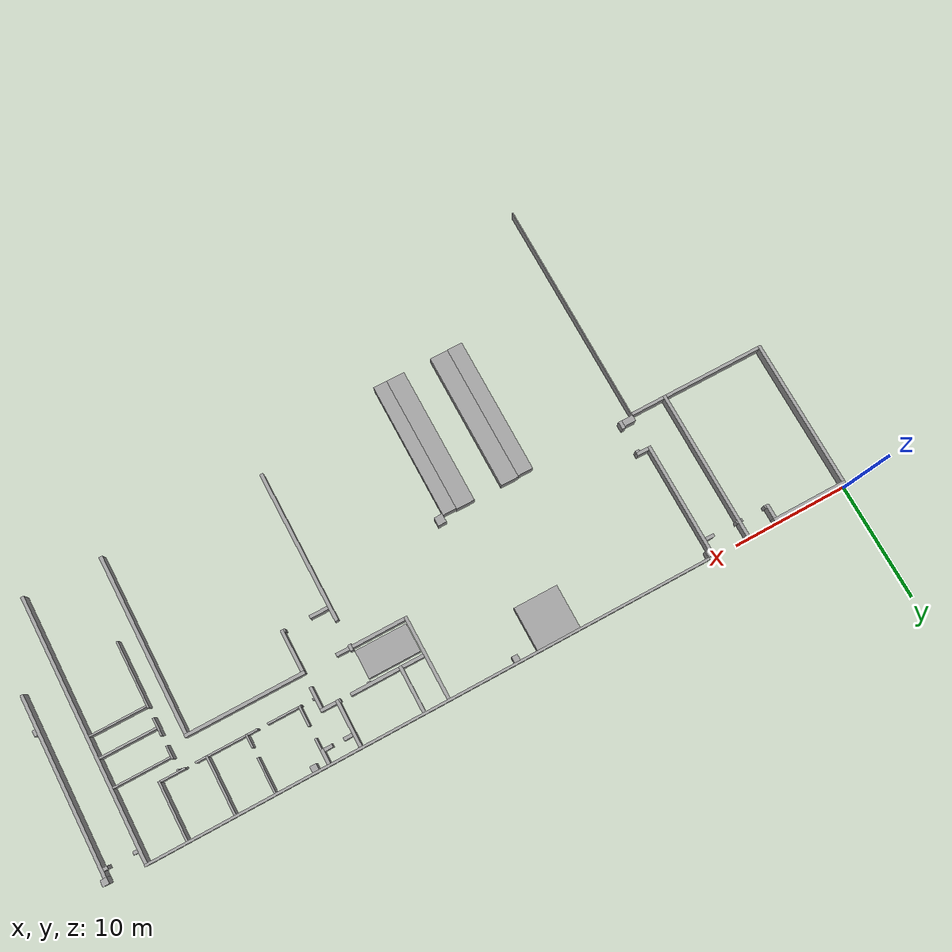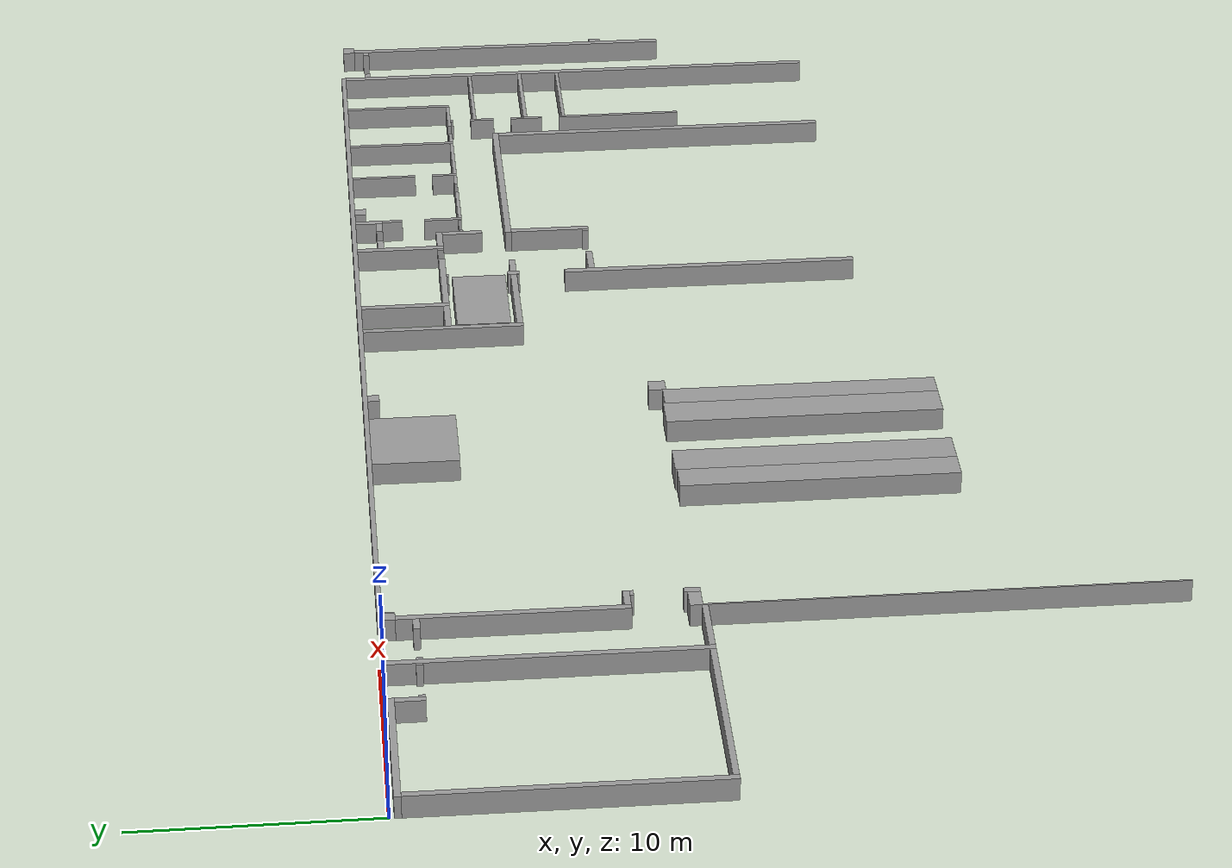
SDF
<sdf version="1.4">
 <model name="AdlerErfurtShopUpstairs">
  <static>1</static>
  <link name="Wall_0">
   <collision name="Wall_0_Collision">
    <geometry><box><size>48.51064 0.20426 1.00000</size></box></geometry>
    <pose>36.84255 -0.10213 0.50000 0 0 0.00000</pose>
   </collision>
   <visual name="Wall_0_Visual">
    <geometry><box><size>48.51064 0.20426 1.00000</size></box></geometry>
    <material>
     <script><uri>file://media/materials/scripts/gazebo.material</uri><name>Gazebo/Grey</name></script>
    </material>
    <pose>36.84255 -0.10213 0.50000 0 0 0.00000</pose>
   </visual>
  </link>
  <link name="Wall_1">
   <collision name="Wall_1_Collision">
    <geometry><box><size>6.56170 0.28085 1.00000</size></box></geometry>
    <pose>3.28085 -0.31915 0.50000 0 0 0.00000</pose>
   </collision>
   <visual name="Wall_1_Visual">
    <geometry><box><size>6.56170 0.28085 1.00000</size></box></geometry>
    <material>
     <script><uri>file://media/materials/scripts/gazebo.material</uri><name>Gazebo/Grey</name></script>
    </material>
    <pose>3.28085 -0.31915 0.50000 0 0 0.00000</pose>
   </visual>
  </link>
  <link name="Wall_2">
   <collision name="Wall_2_Collision">
    <geometry><box><size>0.28085 13.07234 1.00000</size></box></geometry>
    <pose>9.02553 -6.71489 0.50000 0 0 0.00000</pose>
   </collision>
   <visual name="Wall_2_Visual">
    <geometry><box><size>0.28085 13.07234 1.00000</size></box></geometry>
    <material>
     <script><uri>file://media/materials/scripts/gazebo.material</uri><name>Gazebo/Grey</name></script>
    </material>
    <pose>9.02553 -6.71489 0.50000 0 0 0.00000</pose>
   </visual>
  </link>
  <link name="Wall_3">
   <collision name="Wall_3_Collision">
    <geometry><box><size>0.51064 0.53617 1.00000</size></box></geometry>
    <pose>12.33191 -0.44681 0.50000 0 0 0.00000</pose>
   </collision>
   <visual name="Wall_3_Visual">
    <geometry><box><size>0.51064 0.53617 1.00000</size></box></geometry>
    <material>
     <script><uri>file://media/materials/scripts/gazebo.material</uri><name>Gazebo/Grey</name></script>
    </material>
    <pose>12.33191 -0.44681 0.50000 0 0 0.00000</pose>
   </visual>
  </link>
  <link name="Wall_4">
   <collision name="Wall_4_Collision">
    <geometry><box><size>0.53617 0.53617 1.00000</size></box></geometry>
    <pose>64.17447 -0.44681 0.50000 0 0 0.00000</pose>
   </collision>
   <visual name="Wall_4_Visual">
    <geometry><box><size>0.53617 0.53617 1.00000</size></box></geometry>
    <material>
     <script><uri>file://media/materials/scripts/gazebo.material</uri><name>Gazebo/Grey</name></script>
    </material>
    <pose>64.17447 -0.44681 0.50000 0 0 0.00000</pose>
   </visual>
  </link>
  <link name="Wall_5">
   <collision name="Wall_5_Collision">
    <geometry><box><size>0.05106 0.51064 1.00000</size></box></geometry>
    <pose>12.61277 -0.45957 0.50000 0 0 0.00000</pose>
   </collision>
   <visual name="Wall_5_Visual">
    <geometry><box><size>0.05106 0.51064 1.00000</size></box></geometry>
    <material>
     <script><uri>file://media/materials/scripts/gazebo.material</uri><name>Gazebo/Grey</name></script>
    </material>
    <pose>12.61277 -0.45957 0.50000 0 0 0.00000</pose>
   </visual>
  </link>
  <link name="Wall_6">
   <collision name="Wall_6_Collision">
    <geometry><box><size>3.77872 3.72766 1.00000</size></box></geometry>
    <pose>25.99149 -2.06809 0.50000 0 0 0.00000</pose>
   </collision>
   <visual name="Wall_6_Visual">
    <geometry><box><size>3.77872 3.72766 1.00000</size></box></geometry>
    <material>
     <script><uri>file://media/materials/scripts/gazebo.material</uri><name>Gazebo/Grey</name></script>
    </material>
    <pose>25.99149 -2.06809 0.50000 0 0 0.00000</pose>
   </visual>
  </link>
  <link name="Wall_7">
   <collision name="Wall_7_Collision">
    <geometry><box><size>0.51064 0.51064 1.00000</size></box></geometry>
    <pose>29.61702 -0.45957 0.50000 0 0 0.00000</pose>
   </collision>
   <visual name="Wall_7_Visual">
    <geometry><box><size>0.51064 0.51064 1.00000</size></box></geometry>
    <material>
     <script><uri>file://media/materials/scripts/gazebo.material</uri><name>Gazebo/Grey</name></script>
    </material>
    <pose>29.61702 -0.45957 0.50000 0 0 0.00000</pose>
   </visual>
  </link>
  <link name="Wall_8">
   <collision name="Wall_8_Collision">
    <geometry><box><size>0.28085 7.14894 1.00000</size></box></geometry>
    <pose>35.57872 -3.77872 0.50000 0 0 0.00000</pose>
   </collision>
   <visual name="Wall_8_Visual">
    <geometry><box><size>0.28085 7.14894 1.00000</size></box></geometry>
    <material>
     <script><uri>file://media/materials/scripts/gazebo.material</uri><name>Gazebo/Grey</name></script>
    </material>
    <pose>35.57872 -3.77872 0.50000 0 0 0.00000</pose>
   </visual>
  </link>
  <link name="Wall_9">
   <collision name="Wall_9_Collision">
    <geometry><box><size>0.28085 3.95745 1.00000</size></box></geometry>
    <pose>37.69787 -2.18298 0.50000 0 0 0.00000</pose>
   </collision>
   <visual name="Wall_9_Visual">
    <geometry><box><size>0.28085 3.95745 1.00000</size></box></geometry>
    <material>
     <script><uri>file://media/materials/scripts/gazebo.material</uri><name>Gazebo/Grey</name></script>
    </material>
    <pose>37.69787 -2.18298 0.50000 0 0 0.00000</pose>
   </visual>
  </link>
  <link name="Wall_10">
   <collision name="Wall_10_Collision">
    <geometry><box><size>0.28085 3.95745 1.00000</size></box></geometry>
    <pose>43.11064 -2.18298 0.50000 0 0 0.00000</pose>
   </collision>
   <visual name="Wall_10_Visual">
    <geometry><box><size>0.28085 3.95745 1.00000</size></box></geometry>
    <material>
     <script><uri>file://media/materials/scripts/gazebo.material</uri><name>Gazebo/Grey</name></script>
    </material>
    <pose>43.11064 -2.18298 0.50000 0 0 0.00000</pose>
   </visual>
  </link>
  <link name="Wall_11">
   <collision name="Wall_11_Collision">
    <geometry><box><size>0.28085 1.22553 1.00000</size></box></geometry>
    <pose>45.79149 -0.81702 0.50000 0 0 0.00000</pose>
   </collision>
   <visual name="Wall_11_Visual">
    <geometry><box><size>0.28085 1.22553 1.00000</size></box></geometry>
    <material>
     <script><uri>file://media/materials/scripts/gazebo.material</uri><name>Gazebo/Grey</name></script>
    </material>
    <pose>45.79149 -0.81702 0.50000 0 0 0.00000</pose>
   </visual>
  </link>
  <link name="Wall_12">
   <collision name="Wall_12_Collision">
    <geometry><box><size>0.53617 0.51064 1.00000</size></box></geometry>
    <pose>46.88936 -0.45957 0.50000 0 0 0.00000</pose>
   </collision>
   <visual name="Wall_12_Visual">
    <geometry><box><size>0.53617 0.51064 1.00000</size></box></geometry>
    <material>
     <script><uri>file://media/materials/scripts/gazebo.material</uri><name>Gazebo/Grey</name></script>
    </material>
    <pose>46.88936 -0.45957 0.50000 0 0 0.00000</pose>
   </visual>
  </link>
  <link name="Wall_13">
   <collision name="Wall_13_Collision">
    <geometry><box><size>0.15319 2.96170 1.00000</size></box></geometry>
    <pose>50.29787 -1.68511 0.50000 0 0 0.00000</pose>
   </collision>
   <visual name="Wall_13_Visual">
    <geometry><box><size>0.15319 2.96170 1.00000</size></box></geometry>
    <material>
     <script><uri>file://media/materials/scripts/gazebo.material</uri><name>Gazebo/Grey</name></script>
    </material>
    <pose>50.29787 -1.68511 0.50000 0 0 0.00000</pose>
   </visual>
  </link>
  <link name="Wall_14">
   <collision name="Wall_14_Collision">
    <geometry><box><size>0.17872 4.92766 1.00000</size></box></geometry>
    <pose>53.62979 -2.66809 0.50000 0 0 0.00000</pose>
   </collision>
   <visual name="Wall_14_Visual">
    <geometry><box><size>0.17872 4.92766 1.00000</size></box></geometry>
    <material>
     <script><uri>file://media/materials/scripts/gazebo.material</uri><name>Gazebo/Grey</name></script>
    </material>
    <pose>53.62979 -2.66809 0.50000 0 0 0.00000</pose>
   </visual>
  </link>
  <link name="Wall_15">
   <collision name="Wall_15_Collision">
    <geometry><box><size>0.17872 4.92766 1.00000</size></box></geometry>
    <pose>57.58723 -2.66809 0.50000 0 0 0.00000</pose>
   </collision>
   <visual name="Wall_15_Visual">
    <geometry><box><size>0.17872 4.92766 1.00000</size></box></geometry>
    <material>
     <script><uri>file://media/materials/scripts/gazebo.material</uri><name>Gazebo/Grey</name></script>
    </material>
    <pose>57.58723 -2.66809 0.50000 0 0 0.00000</pose>
   </visual>
  </link>
  <link name="Wall_16">
   <collision name="Wall_16_Collision">
    <geometry><box><size>0.28085 22.57021 1.00000</size></box></geometry>
    <pose>60.95745 -11.48936 0.50000 0 0 0.00000</pose>
   </collision>
   <visual name="Wall_16_Visual">
    <geometry><box><size>0.28085 22.57021 1.00000</size></box></geometry>
    <material>
     <script><uri>file://media/materials/scripts/gazebo.material</uri><name>Gazebo/Grey</name></script>
    </material>
    <pose>60.95745 -11.48936 0.50000 0 0 0.00000</pose>
   </visual>
  </link>
  <link name="Wall_17">
   <collision name="Wall_17_Collision">
    <geometry><box><size>0.28085 12.79149 1.00000</size></box></geometry>
    <pose>0.14043 -6.85532 0.50000 0 0 0.00000</pose>
   </collision>
   <visual name="Wall_17_Visual">
    <geometry><box><size>0.28085 12.79149 1.00000</size></box></geometry>
    <material>
     <script><uri>file://media/materials/scripts/gazebo.material</uri><name>Gazebo/Grey</name></script>
    </material>
    <pose>0.14043 -6.85532 0.50000 0 0 0.00000</pose>
   </visual>
  </link>
  <link name="Wall_18">
   <collision name="Wall_18_Collision">
    <geometry><box><size>0.28085 1.22553 1.00000</size></box></geometry>
    <pose>6.42128 -1.07234 0.50000 0 0 0.00000</pose>
   </collision>
   <visual name="Wall_18_Visual">
    <geometry><box><size>0.28085 1.22553 1.00000</size></box></geometry>
    <material>
     <script><uri>file://media/materials/scripts/gazebo.material</uri><name>Gazebo/Grey</name></script>
    </material>
    <pose>6.42128 -1.07234 0.50000 0 0 0.00000</pose>
   </visual>
  </link>
  <link name="Wall_19">
   <collision name="Wall_19_Collision">
    <geometry><box><size>0.28085 9.47234 1.00000</size></box></geometry>
    <pose>12.21702 -5.45106 0.50000 0 0 0.00000</pose>
   </collision>
   <visual name="Wall_19_Visual">
    <geometry><box><size>0.28085 9.47234 1.00000</size></box></geometry>
    <material>
     <script><uri>file://media/materials/scripts/gazebo.material</uri><name>Gazebo/Grey</name></script>
    </material>
    <pose>12.21702 -5.45106 0.50000 0 0 0.00000</pose>
   </visual>
  </link>
  <link name="Wall_20">
   <collision name="Wall_20_Collision">
    <geometry><box><size>0.28085 15.16596 1.00000</size></box></geometry>
    <pose>64.04681 -8.29787 0.50000 0 0 0.00000</pose>
   </collision>
   <visual name="Wall_20_Visual">
    <geometry><box><size>0.28085 15.16596 1.00000</size></box></geometry>
    <material>
     <script><uri>file://media/materials/scripts/gazebo.material</uri><name>Gazebo/Grey</name></script>
    </material>
    <pose>64.04681 -8.29787 0.50000 0 0 0.00000</pose>
   </visual>
  </link>
  <link name="Wall_21">
   <collision name="Wall_21_Collision">
    <geometry><box><size>0.74043 0.28085 1.00000</size></box></geometry>
    <pose>43.62128 -1.28936 0.50000 0 0 0.00000</pose>
   </collision>
   <visual name="Wall_21_Visual">
    <geometry><box><size>0.74043 0.28085 1.00000</size></box></geometry>
    <material>
     <script><uri>file://media/materials/scripts/gazebo.material</uri><name>Gazebo/Grey</name></script>
    </material>
    <pose>43.62128 -1.28936 0.50000 0 0 0.00000</pose>
   </visual>
  </link>
  <link name="Wall_22">
   <collision name="Wall_22_Collision">
    <geometry><box><size>0.71489 0.28085 1.00000</size></box></geometry>
    <pose>45.29362 -1.28936 0.50000 0 0 0.00000</pose>
   </collision>
   <visual name="Wall_22_Visual">
    <geometry><box><size>0.71489 0.28085 1.00000</size></box></geometry>
    <material>
     <script><uri>file://media/materials/scripts/gazebo.material</uri><name>Gazebo/Grey</name></script>
    </material>
    <pose>45.29362 -1.28936 0.50000 0 0 0.00000</pose>
   </visual>
  </link>
  <link name="Wall_23">
   <collision name="Wall_23_Collision">
    <geometry><box><size>0.38298 0.28085 1.00000</size></box></geometry>
    <pose>61.28936 -1.28936 0.50000 0 0 0.00000</pose>
   </collision>
   <visual name="Wall_23_Visual">
    <geometry><box><size>0.38298 0.28085 1.00000</size></box></geometry>
    <material>
     <script><uri>file://media/materials/scripts/gazebo.material</uri><name>Gazebo/Grey</name></script>
    </material>
    <pose>61.28936 -1.28936 0.50000 0 0 0.00000</pose>
   </visual>
  </link>
  <link name="Wall_24">
   <collision name="Wall_24_Collision">
    <geometry><box><size>0.35745 0.28085 1.00000</size></box></geometry>
    <pose>63.72766 -1.28936 0.50000 0 0 0.00000</pose>
   </collision>
   <visual name="Wall_24_Visual">
    <geometry><box><size>0.35745 0.28085 1.00000</size></box></geometry>
    <material>
     <script><uri>file://media/materials/scripts/gazebo.material</uri><name>Gazebo/Grey</name></script>
    </material>
    <pose>63.72766 -1.28936 0.50000 0 0 0.00000</pose>
   </visual>
  </link>
  <link name="Wall_25">
   <collision name="Wall_25_Collision">
    <geometry><box><size>0.12766 0.28085 1.00000</size></box></geometry>
    <pose>6.62553 -1.54468 0.50000 0 0 0.00000</pose>
   </collision>
   <visual name="Wall_25_Visual">
    <geometry><box><size>0.12766 0.28085 1.00000</size></box></geometry>
    <material>
     <script><uri>file://media/materials/scripts/gazebo.material</uri><name>Gazebo/Grey</name></script>
    </material>
    <pose>6.62553 -1.54468 0.50000 0 0 0.00000</pose>
   </visual>
  </link>
  <link name="Wall_26">
   <collision name="Wall_26_Collision">
    <geometry><box><size>0.12766 0.28085 1.00000</size></box></geometry>
    <pose>8.82128 -1.54468 0.50000 0 0 0.00000</pose>
   </collision>
   <visual name="Wall_26_Visual">
    <geometry><box><size>0.12766 0.28085 1.00000</size></box></geometry>
    <material>
     <script><uri>file://media/materials/scripts/gazebo.material</uri><name>Gazebo/Grey</name></script>
    </material>
    <pose>8.82128 -1.54468 0.50000 0 0 0.00000</pose>
   </visual>
  </link>
  <link name="Wall_27">
   <collision name="Wall_27_Collision">
    <geometry><box><size>0.12766 0.28085 1.00000</size></box></geometry>
    <pose>9.22979 -1.54468 0.50000 0 0 0.00000</pose>
   </collision>
   <visual name="Wall_27_Visual">
    <geometry><box><size>0.12766 0.28085 1.00000</size></box></geometry>
    <material>
     <script><uri>file://media/materials/scripts/gazebo.material</uri><name>Gazebo/Grey</name></script>
    </material>
    <pose>9.22979 -1.54468 0.50000 0 0 0.00000</pose>
   </visual>
  </link>
  <link name="Wall_28">
   <collision name="Wall_28_Collision">
    <geometry><box><size>0.74043 0.28085 1.00000</size></box></geometry>
    <pose>11.70638 -1.54468 0.50000 0 0 0.00000</pose>
   </collision>
   <visual name="Wall_28_Visual">
    <geometry><box><size>0.74043 0.28085 1.00000</size></box></geometry>
    <material>
     <script><uri>file://media/materials/scripts/gazebo.material</uri><name>Gazebo/Grey</name></script>
    </material>
    <pose>11.70638 -1.54468 0.50000 0 0 0.00000</pose>
   </visual>
  </link>
  <link name="Wall_29">
   <collision name="Wall_29_Collision">
    <geometry><box><size>0.17872 0.94468 1.00000</size></box></geometry>
    <pose>45.84255 -1.90213 0.50000 0 0 0.00000</pose>
   </collision>
   <visual name="Wall_29_Visual">
    <geometry><box><size>0.17872 0.94468 1.00000</size></box></geometry>
    <material>
     <script><uri>file://media/materials/scripts/gazebo.material</uri><name>Gazebo/Grey</name></script>
    </material>
    <pose>45.84255 -1.90213 0.50000 0 0 0.00000</pose>
   </visual>
  </link>
  <link name="Wall_30">
   <collision name="Wall_30_Collision">
    <geometry><box><size>0.17872 1.73617 1.00000</size></box></geometry>
    <pose>45.84255 -4.26383 0.50000 0 0 0.00000</pose>
   </collision>
   <visual name="Wall_30_Visual">
    <geometry><box><size>0.17872 1.73617 1.00000</size></box></geometry>
    <material>
     <script><uri>file://media/materials/scripts/gazebo.material</uri><name>Gazebo/Grey</name></script>
    </material>
    <pose>45.84255 -4.26383 0.50000 0 0 0.00000</pose>
   </visual>
  </link>
  <link name="Wall_31">
   <collision name="Wall_31_Collision">
    <geometry><box><size>1.83830 0.28085 1.00000</size></box></geometry>
    <pose>36.63830 -4.02128 0.50000 0 0 0.00000</pose>
   </collision>
   <visual name="Wall_31_Visual">
    <geometry><box><size>1.83830 0.28085 1.00000</size></box></geometry>
    <material>
     <script><uri>file://media/materials/scripts/gazebo.material</uri><name>Gazebo/Grey</name></script>
    </material>
    <pose>36.63830 -4.02128 0.50000 0 0 0.00000</pose>
   </visual>
  </link>
  <link name="Wall_32">
   <collision name="Wall_32_Collision">
    <geometry><box><size>4.16170 0.28085 1.00000</size></box></geometry>
    <pose>39.91915 -4.02128 0.50000 0 0 0.00000</pose>
   </collision>
   <visual name="Wall_32_Visual">
    <geometry><box><size>4.16170 0.28085 1.00000</size></box></geometry>
    <material>
     <script><uri>file://media/materials/scripts/gazebo.material</uri><name>Gazebo/Grey</name></script>
    </material>
    <pose>39.91915 -4.02128 0.50000 0 0 0.00000</pose>
   </visual>
  </link>
  <link name="Wall_33">
   <collision name="Wall_33_Collision">
    <geometry><box><size>0.12766 0.28085 1.00000</size></box></geometry>
    <pose>42.90638 -4.02128 0.50000 0 0 0.00000</pose>
   </collision>
   <visual name="Wall_33_Visual">
    <geometry><box><size>0.12766 0.28085 1.00000</size></box></geometry>
    <material>
     <script><uri>file://media/materials/scripts/gazebo.material</uri><name>Gazebo/Grey</name></script>
    </material>
    <pose>42.90638 -4.02128 0.50000 0 0 0.00000</pose>
   </visual>
  </link>
  <link name="Wall_34">
   <collision name="Wall_34_Collision">
    <geometry><box><size>1.32766 0.28085 1.00000</size></box></geometry>
    <pose>43.91489 -4.02128 0.50000 0 0 0.00000</pose>
   </collision>
   <visual name="Wall_34_Visual">
    <geometry><box><size>1.32766 0.28085 1.00000</size></box></geometry>
    <material>
     <script><uri>file://media/materials/scripts/gazebo.material</uri><name>Gazebo/Grey</name></script>
    </material>
    <pose>43.91489 -4.02128 0.50000 0 0 0.00000</pose>
   </visual>
  </link>
  <link name="Wall_35">
   <collision name="Wall_35_Collision">
    <geometry><box><size>0.15319 1.14894 1.00000</size></box></geometry>
    <pose>50.29787 -4.55745 0.50000 0 0 0.00000</pose>
   </collision>
   <visual name="Wall_35_Visual">
    <geometry><box><size>0.15319 1.14894 1.00000</size></box></geometry>
    <material>
     <script><uri>file://media/materials/scripts/gazebo.material</uri><name>Gazebo/Grey</name></script>
    </material>
    <pose>50.29787 -4.55745 0.50000 0 0 0.00000</pose>
   </visual>
  </link>
  <link name="Wall_36">
   <collision name="Wall_36_Collision">
    <geometry><box><size>0.28085 0.10213 1.00000</size></box></geometry>
    <pose>40.37872 -4.21277 0.50000 0 0 0.00000</pose>
   </collision>
   <visual name="Wall_36_Visual">
    <geometry><box><size>0.28085 0.10213 1.00000</size></box></geometry>
    <material>
     <script><uri>file://media/materials/scripts/gazebo.material</uri><name>Gazebo/Grey</name></script>
    </material>
    <pose>40.37872 -4.21277 0.50000 0 0 0.00000</pose>
   </visual>
  </link>
  <link name="Wall_37">
   <collision name="Wall_37_Collision">
    <geometry><box><size>0.28085 1.83830 1.00000</size></box></geometry>
    <pose>44.43830 -5.08085 0.50000 0 0 0.00000</pose>
   </collision>
   <visual name="Wall_37_Visual">
    <geometry><box><size>0.28085 1.83830 1.00000</size></box></geometry>
    <material>
     <script><uri>file://media/materials/scripts/gazebo.material</uri><name>Gazebo/Grey</name></script>
    </material>
    <pose>44.43830 -5.08085 0.50000 0 0 0.00000</pose>
   </visual>
  </link>
  <link name="Wall_38">
   <collision name="Wall_38_Collision">
    <geometry><box><size>4.44255 2.40000 1.00000</size></box></geometry>
    <pose>37.99149 -5.61702 0.50000 0 0 0.00000</pose>
   </collision>
   <visual name="Wall_38_Visual">
    <geometry><box><size>4.44255 2.40000 1.00000</size></box></geometry>
    <material>
     <script><uri>file://media/materials/scripts/gazebo.material</uri><name>Gazebo/Grey</name></script>
    </material>
    <pose>37.99149 -5.61702 0.50000 0 0 0.00000</pose>
   </visual>
  </link>
  <link name="Wall_39">
   <collision name="Wall_39_Collision">
    <geometry><box><size>0.12766 0.15319 1.00000</size></box></geometry>
    <pose>44.64255 -5.05532 0.50000 0 0 0.00000</pose>
   </collision>
   <visual name="Wall_39_Visual">
    <geometry><box><size>0.12766 0.15319 1.00000</size></box></geometry>
    <material>
     <script><uri>file://media/materials/scripts/gazebo.material</uri><name>Gazebo/Grey</name></script>
    </material>
    <pose>44.64255 -5.05532 0.50000 0 0 0.00000</pose>
   </visual>
  </link>
  <link name="Wall_40">
   <collision name="Wall_40_Collision">
    <geometry><box><size>0.10213 0.15319 1.00000</size></box></geometry>
    <pose>45.70213 -5.05532 0.50000 0 0 0.00000</pose>
   </collision>
   <visual name="Wall_40_Visual">
    <geometry><box><size>0.10213 0.15319 1.00000</size></box></geometry>
    <material>
     <script><uri>file://media/materials/scripts/gazebo.material</uri><name>Gazebo/Grey</name></script>
    </material>
    <pose>45.70213 -5.05532 0.50000 0 0 0.00000</pose>
   </visual>
  </link>
  <link name="Wall_41">
   <collision name="Wall_41_Collision">
    <geometry><box><size>2.60426 0.15319 1.00000</size></box></geometry>
    <pose>47.23404 -5.05532 0.50000 0 0 0.00000</pose>
   </collision>
   <visual name="Wall_41_Visual">
    <geometry><box><size>2.60426 0.15319 1.00000</size></box></geometry>
    <material>
     <script><uri>file://media/materials/scripts/gazebo.material</uri><name>Gazebo/Grey</name></script>
    </material>
    <pose>47.23404 -5.05532 0.50000 0 0 0.00000</pose>
   </visual>
  </link>
  <link name="Wall_42">
   <collision name="Wall_42_Collision">
    <geometry><box><size>0.86809 0.15319 1.00000</size></box></geometry>
    <pose>49.78723 -5.05532 0.50000 0 0 0.00000</pose>
   </collision>
   <visual name="Wall_42_Visual">
    <geometry><box><size>0.86809 0.15319 1.00000</size></box></geometry>
    <material>
     <script><uri>file://media/materials/scripts/gazebo.material</uri><name>Gazebo/Grey</name></script>
    </material>
    <pose>49.78723 -5.05532 0.50000 0 0 0.00000</pose>
   </visual>
  </link>
  <link name="Wall_43">
   <collision name="Wall_43_Collision">
    <geometry><box><size>3.16596 0.15319 1.00000</size></box></geometry>
    <pose>51.95745 -5.05532 0.50000 0 0 0.00000</pose>
   </collision>
   <visual name="Wall_43_Visual">
    <geometry><box><size>3.16596 0.15319 1.00000</size></box></geometry>
    <material>
     <script><uri>file://media/materials/scripts/gazebo.material</uri><name>Gazebo/Grey</name></script>
    </material>
    <pose>51.95745 -5.05532 0.50000 0 0 0.00000</pose>
   </visual>
  </link>
  <link name="Wall_44">
   <collision name="Wall_44_Collision">
    <geometry><box><size>0.86809 0.15319 1.00000</size></box></geometry>
    <pose>54.15319 -5.05532 0.50000 0 0 0.00000</pose>
   </collision>
   <visual name="Wall_44_Visual">
    <geometry><box><size>0.86809 0.15319 1.00000</size></box></geometry>
    <material>
     <script><uri>file://media/materials/scripts/gazebo.material</uri><name>Gazebo/Grey</name></script>
    </material>
    <pose>54.15319 -5.05532 0.50000 0 0 0.00000</pose>
   </visual>
  </link>
  <link name="Wall_45">
   <collision name="Wall_45_Collision">
    <geometry><box><size>2.09362 0.15319 1.00000</size></box></geometry>
    <pose>56.45106 -5.05532 0.50000 0 0 0.00000</pose>
   </collision>
   <visual name="Wall_45_Visual">
    <geometry><box><size>2.09362 0.15319 1.00000</size></box></geometry>
    <material>
     <script><uri>file://media/materials/scripts/gazebo.material</uri><name>Gazebo/Grey</name></script>
    </material>
    <pose>56.45106 -5.05532 0.50000 0 0 0.00000</pose>
   </visual>
  </link>
  <link name="Wall_46">
   <collision name="Wall_46_Collision">
    <geometry><box><size>0.15319 0.12766 1.00000</size></box></geometry>
    <pose>55.96596 -5.19574 0.50000 0 0 0.00000</pose>
   </collision>
   <visual name="Wall_46_Visual">
    <geometry><box><size>0.15319 0.12766 1.00000</size></box></geometry>
    <material>
     <script><uri>file://media/materials/scripts/gazebo.material</uri><name>Gazebo/Grey</name></script>
    </material>
    <pose>55.96596 -5.19574 0.50000 0 0 0.00000</pose>
   </visual>
  </link>
  <link name="Wall_47">
   <collision name="Wall_47_Collision">
    <geometry><box><size>0.15319 1.12340 1.00000</size></box></geometry>
    <pose>55.96596 -6.66383 0.50000 0 0 0.00000</pose>
   </collision>
   <visual name="Wall_47_Visual">
    <geometry><box><size>0.15319 1.12340 1.00000</size></box></geometry>
    <material>
     <script><uri>file://media/materials/scripts/gazebo.material</uri><name>Gazebo/Grey</name></script>
    </material>
    <pose>55.96596 -6.66383 0.50000 0 0 0.00000</pose>
   </visual>
  </link>
  <link name="Wall_48">
   <collision name="Wall_48_Collision">
    <geometry><box><size>4.77447 0.15319 1.00000</size></box></geometry>
    <pose>58.42979 -6.30638 0.50000 0 0 0.00000</pose>
   </collision>
   <visual name="Wall_48_Visual">
    <geometry><box><size>4.77447 0.15319 1.00000</size></box></geometry>
    <material>
     <script><uri>file://media/materials/scripts/gazebo.material</uri><name>Gazebo/Grey</name></script>
    </material>
    <pose>58.42979 -6.30638 0.50000 0 0 0.00000</pose>
   </visual>
  </link>
  <link name="Wall_49">
   <collision name="Wall_49_Collision">
    <geometry><box><size>0.28085 0.53617 1.00000</size></box></geometry>
    <pose>40.37872 -7.21277 0.50000 0 0 0.00000</pose>
   </collision>
   <visual name="Wall_49_Visual">
    <geometry><box><size>0.28085 0.53617 1.00000</size></box></geometry>
    <material>
     <script><uri>file://media/materials/scripts/gazebo.material</uri><name>Gazebo/Grey</name></script>
    </material>
    <pose>40.37872 -7.21277 0.50000 0 0 0.00000</pose>
   </visual>
  </link>
  <link name="Wall_50">
   <collision name="Wall_50_Collision">
    <geometry><box><size>4.51915 0.28085 1.00000</size></box></geometry>
    <pose>37.97872 -7.21277 0.50000 0 0 0.00000</pose>
   </collision>
   <visual name="Wall_50_Visual">
    <geometry><box><size>4.51915 0.28085 1.00000</size></box></geometry>
    <material>
     <script><uri>file://media/materials/scripts/gazebo.material</uri><name>Gazebo/Grey</name></script>
    </material>
    <pose>37.97872 -7.21277 0.50000 0 0 0.00000</pose>
   </visual>
  </link>
  <link name="Wall_51">
   <collision name="Wall_51_Collision">
    <geometry><box><size>1.09787 0.28085 1.00000</size></box></geometry>
    <pose>41.06809 -7.21277 0.50000 0 0 0.00000</pose>
   </collision>
   <visual name="Wall_51_Visual">
    <geometry><box><size>1.09787 0.28085 1.00000</size></box></geometry>
    <material>
     <script><uri>file://media/materials/scripts/gazebo.material</uri><name>Gazebo/Grey</name></script>
    </material>
    <pose>41.06809 -7.21277 0.50000 0 0 0.00000</pose>
   </visual>
  </link>
  <link name="Wall_52">
   <collision name="Wall_52_Collision">
    <geometry><box><size>10.16170 0.28085 1.00000</size></box></geometry>
    <pose>49.37872 -7.21277 0.50000 0 0 0.00000</pose>
   </collision>
   <visual name="Wall_52_Visual">
    <geometry><box><size>10.16170 0.28085 1.00000</size></box></geometry>
    <material>
     <script><uri>file://media/materials/scripts/gazebo.material</uri><name>Gazebo/Grey</name></script>
    </material>
    <pose>49.37872 -7.21277 0.50000 0 0 0.00000</pose>
   </visual>
  </link>
  <link name="Wall_53">
   <collision name="Wall_53_Collision">
    <geometry><box><size>0.02553 0.12766 1.00000</size></box></geometry>
    <pose>40.22553 -7.41702 0.50000 0 0 0.00000</pose>
   </collision>
   <visual name="Wall_53_Visual">
    <geometry><box><size>0.02553 0.12766 1.00000</size></box></geometry>
    <material>
     <script><uri>file://media/materials/scripts/gazebo.material</uri><name>Gazebo/Grey</name></script>
    </material>
    <pose>40.22553 -7.41702 0.50000 0 0 0.00000</pose>
   </visual>
  </link>
  <link name="Wall_54">
   <collision name="Wall_54_Collision">
    <geometry><box><size>0.28085 3.57447 1.00000</size></box></geometry>
    <pose>44.43830 -9.14043 0.50000 0 0 0.00000</pose>
   </collision>
   <visual name="Wall_54_Visual">
    <geometry><box><size>0.28085 3.57447 1.00000</size></box></geometry>
    <material>
     <script><uri>file://media/materials/scripts/gazebo.material</uri><name>Gazebo/Grey</name></script>
    </material>
    <pose>44.43830 -9.14043 0.50000 0 0 0.00000</pose>
   </visual>
  </link>
  <link name="Wall_55">
   <collision name="Wall_55_Collision">
    <geometry><box><size>0.30638 15.42128 1.00000</size></box></geometry>
    <pose>54.30638 -15.06383 0.50000 0 0 0.00000</pose>
   </collision>
   <visual name="Wall_55_Visual">
    <geometry><box><size>0.30638 15.42128 1.00000</size></box></geometry>
    <material>
     <script><uri>file://media/materials/scripts/gazebo.material</uri><name>Gazebo/Grey</name></script>
    </material>
    <pose>54.30638 -15.06383 0.50000 0 0 0.00000</pose>
   </visual>
  </link>
  <link name="Wall_56">
   <collision name="Wall_56_Collision">
    <geometry><box><size>0.15319 1.50638 1.00000</size></box></geometry>
    <pose>55.96596 -8.82128 0.50000 0 0 0.00000</pose>
   </collision>
   <visual name="Wall_56_Visual">
    <geometry><box><size>0.15319 1.50638 1.00000</size></box></geometry>
    <material>
     <script><uri>file://media/materials/scripts/gazebo.material</uri><name>Gazebo/Grey</name></script>
    </material>
    <pose>55.96596 -8.82128 0.50000 0 0 0.00000</pose>
   </visual>
  </link>
  <link name="Wall_57">
   <collision name="Wall_57_Collision">
    <geometry><box><size>4.77447 0.17872 1.00000</size></box></geometry>
    <pose>58.42979 -8.77021 0.50000 0 0 0.00000</pose>
   </collision>
   <visual name="Wall_57_Visual">
    <geometry><box><size>4.77447 0.17872 1.00000</size></box></geometry>
    <material>
     <script><uri>file://media/materials/scripts/gazebo.material</uri><name>Gazebo/Grey</name></script>
    </material>
    <pose>58.42979 -8.77021 0.50000 0 0 0.00000</pose>
   </visual>
  </link>
  <link name="Wall_58">
   <collision name="Wall_58_Collision">
    <geometry><box><size>0.30638 13.22553 1.00000</size></box></geometry>
    <pose>40.36596 -16.16170 0.50000 0 0 0.00000</pose>
   </collision>
   <visual name="Wall_58_Visual">
    <geometry><box><size>0.30638 13.22553 1.00000</size></box></geometry>
    <material>
     <script><uri>file://media/materials/scripts/gazebo.material</uri><name>Gazebo/Grey</name></script>
    </material>
    <pose>40.36596 -16.16170 0.50000 0 0 0.00000</pose>
   </visual>
  </link>
  <link name="Wall_59">
   <collision name="Wall_59_Collision">
    <geometry><box><size>1.02128 0.28085 1.00000</size></box></geometry>
    <pose>12.86809 -10.04681 0.50000 0 0 0.00000</pose>
   </collision>
   <visual name="Wall_59_Visual">
    <geometry><box><size>1.02128 0.28085 1.00000</size></box></geometry>
    <material>
     <script><uri>file://media/materials/scripts/gazebo.material</uri><name>Gazebo/Grey</name></script>
    </material>
    <pose>12.86809 -10.04681 0.50000 0 0 0.00000</pose>
   </visual>
  </link>
  <link name="Wall_60">
   <collision name="Wall_60_Collision">
    <geometry><box><size>0.33191 0.15319 1.00000</size></box></geometry>
    <pose>13.21277 -10.26383 0.50000 0 0 0.00000</pose>
   </collision>
   <visual name="Wall_60_Visual">
    <geometry><box><size>0.33191 0.15319 1.00000</size></box></geometry>
    <material>
     <script><uri>file://media/materials/scripts/gazebo.material</uri><name>Gazebo/Grey</name></script>
    </material>
    <pose>13.21277 -10.26383 0.50000 0 0 0.00000</pose>
   </visual>
  </link>
  <link name="Wall_61">
   <collision name="Wall_61_Collision">
    <geometry><box><size>0.15319 5.74468 1.00000</size></box></geometry>
    <pose>55.96596 -13.28936 0.50000 0 0 0.00000</pose>
   </collision>
   <visual name="Wall_61_Visual">
    <geometry><box><size>0.15319 5.74468 1.00000</size></box></geometry>
    <material>
     <script><uri>file://media/materials/scripts/gazebo.material</uri><name>Gazebo/Grey</name></script>
    </material>
    <pose>55.96596 -13.28936 0.50000 0 0 0.00000</pose>
   </visual>
  </link>
  <link name="Wall_62">
   <collision name="Wall_62_Collision">
    <geometry><box><size>4.77447 0.15319 1.00000</size></box></geometry>
    <pose>58.42979 -10.62128 0.50000 0 0 0.00000</pose>
   </collision>
   <visual name="Wall_62_Visual">
    <geometry><box><size>4.77447 0.15319 1.00000</size></box></geometry>
    <material>
     <script><uri>file://media/materials/scripts/gazebo.material</uri><name>Gazebo/Grey</name></script>
    </material>
    <pose>58.42979 -10.62128 0.50000 0 0 0.00000</pose>
   </visual>
  </link>
  <link name="Wall_63">
   <collision name="Wall_63_Collision">
    <geometry><box><size>1.58298 0.28085 1.00000</size></box></geometry>
    <pose>41.31064 -10.78723 0.50000 0 0 0.00000</pose>
   </collision>
   <visual name="Wall_63_Visual">
    <geometry><box><size>1.58298 0.28085 1.00000</size></box></geometry>
    <material>
     <script><uri>file://media/materials/scripts/gazebo.material</uri><name>Gazebo/Grey</name></script>
    </material>
    <pose>41.31064 -10.78723 0.50000 0 0 0.00000</pose>
   </visual>
  </link>
  <link name="Wall_64">
   <collision name="Wall_64_Collision">
    <geometry><box><size>0.12766 0.28085 1.00000</size></box></geometry>
    <pose>44.23404 -10.78723 0.50000 0 0 0.00000</pose>
   </collision>
   <visual name="Wall_64_Visual">
    <geometry><box><size>0.12766 0.28085 1.00000</size></box></geometry>
    <material>
     <script><uri>file://media/materials/scripts/gazebo.material</uri><name>Gazebo/Grey</name></script>
    </material>
    <pose>44.23404 -10.78723 0.50000 0 0 0.00000</pose>
   </visual>
  </link>
  <link name="Wall_65">
   <collision name="Wall_65_Collision">
    <geometry><box><size>0.30638 0.66383 1.00000</size></box></geometry>
    <pose>13.22553 -12.71489 0.50000 0 0 0.00000</pose>
   </collision>
   <visual name="Wall_65_Visual">
    <geometry><box><size>0.30638 0.66383 1.00000</size></box></geometry>
    <material>
     <script><uri>file://media/materials/scripts/gazebo.material</uri><name>Gazebo/Grey</name></script>
    </material>
    <pose>13.22553 -12.71489 0.50000 0 0 0.00000</pose>
   </visual>
  </link>
  <link name="Wall_66">
   <collision name="Wall_66_Collision">
    <geometry><box><size>0.74043 0.74043 1.00000</size></box></geometry>
    <pose>29.62979 -12.77872 0.50000 0 0 0.00000</pose>
   </collision>
   <visual name="Wall_66_Visual">
    <geometry><box><size>0.74043 0.74043 1.00000</size></box></geometry>
    <material>
     <script><uri>file://media/materials/scripts/gazebo.material</uri><name>Gazebo/Grey</name></script>
    </material>
    <pose>29.62979 -12.77872 0.50000 0 0 0.00000</pose>
   </visual>
  </link>
  <link name="Wall_67">
   <collision name="Wall_67_Collision">
    <geometry><box><size>0.99574 0.53617 1.00000</size></box></geometry>
    <pose>12.57447 -12.77872 0.50000 0 0 0.00000</pose>
   </collision>
   <visual name="Wall_67_Visual">
    <geometry><box><size>0.99574 0.53617 1.00000</size></box></geometry>
    <material>
     <script><uri>file://media/materials/scripts/gazebo.material</uri><name>Gazebo/Grey</name></script>
    </material>
    <pose>12.57447 -12.77872 0.50000 0 0 0.00000</pose>
   </visual>
  </link>
  <link name="Wall_68">
   <collision name="Wall_68_Collision">
    <geometry><box><size>0.25532 0.53617 1.00000</size></box></geometry>
    <pose>64.31489 -12.77872 0.50000 0 0 0.00000</pose>
   </collision>
   <visual name="Wall_68_Visual">
    <geometry><box><size>0.25532 0.53617 1.00000</size></box></geometry>
    <material>
     <script><uri>file://media/materials/scripts/gazebo.material</uri><name>Gazebo/Grey</name></script>
    </material>
    <pose>64.31489 -12.77872 0.50000 0 0 0.00000</pose>
   </visual>
  </link>
  <link name="Wall_69">
   <collision name="Wall_69_Collision">
    <geometry><box><size>1.55745 11.97447 1.00000</size></box></geometry>
    <pose>23.32340 -18.90638 0.50000 0 0 0.00000</pose>
   </collision>
   <visual name="Wall_69_Visual">
    <geometry><box><size>1.55745 11.97447 1.00000</size></box></geometry>
    <material>
     <script><uri>file://media/materials/scripts/gazebo.material</uri><name>Gazebo/Grey</name></script>
    </material>
    <pose>23.32340 -18.90638 0.50000 0 0 0.00000</pose>
   </visual>
  </link>
  <link name="Wall_70">
   <collision name="Wall_70_Collision">
    <geometry><box><size>1.58298 11.97447 1.00000</size></box></geometry>
    <pose>27.29362 -18.90638 0.50000 0 0 0.00000</pose>
   </collision>
   <visual name="Wall_70_Visual">
    <geometry><box><size>1.58298 11.97447 1.00000</size></box></geometry>
    <material>
     <script><uri>file://media/materials/scripts/gazebo.material</uri><name>Gazebo/Grey</name></script>
    </material>
    <pose>27.29362 -18.90638 0.50000 0 0 0.00000</pose>
   </visual>
  </link>
  <link name="Wall_71">
   <collision name="Wall_71_Collision">
    <geometry><box><size>8.60426 0.25532 1.00000</size></box></geometry>
    <pose>4.58298 -13.12340 0.50000 0 0 0.00000</pose>
   </collision>
   <visual name="Wall_71_Visual">
    <geometry><box><size>8.60426 0.25532 1.00000</size></box></geometry>
    <material>
     <script><uri>file://media/materials/scripts/gazebo.material</uri><name>Gazebo/Grey</name></script>
    </material>
    <pose>4.58298 -13.12340 0.50000 0 0 0.00000</pose>
   </visual>
  </link>
  <link name="Wall_72">
   <collision name="Wall_72_Collision">
    <geometry><box><size>2.91064 0.25532 1.00000</size></box></geometry>
    <pose>10.62128 -13.12340 0.50000 0 0 0.00000</pose>
   </collision>
   <visual name="Wall_72_Visual">
    <geometry><box><size>2.91064 0.25532 1.00000</size></box></geometry>
    <material>
     <script><uri>file://media/materials/scripts/gazebo.material</uri><name>Gazebo/Grey</name></script>
    </material>
    <pose>10.62128 -13.12340 0.50000 0 0 0.00000</pose>
   </visual>
  </link>
  <link name="Wall_73">
   <collision name="Wall_73_Collision">
    <geometry><box><size>1.32766 11.89787 1.00000</size></box></geometry>
    <pose>21.88085 -18.94468 0.50000 0 0 0.00000</pose>
   </collision>
   <visual name="Wall_73_Visual">
    <geometry><box><size>1.32766 11.89787 1.00000</size></box></geometry>
    <material>
     <script><uri>file://media/materials/scripts/gazebo.material</uri><name>Gazebo/Grey</name></script>
    </material>
    <pose>21.88085 -18.94468 0.50000 0 0 0.00000</pose>
   </visual>
  </link>
  <link name="Wall_74">
   <collision name="Wall_74_Collision">
    <geometry><box><size>1.17447 11.89787 1.00000</size></box></geometry>
    <pose>28.67234 -18.94468 0.50000 0 0 0.00000</pose>
   </collision>
   <visual name="Wall_74_Visual">
    <geometry><box><size>1.17447 11.89787 1.00000</size></box></geometry>
    <material>
     <script><uri>file://media/materials/scripts/gazebo.material</uri><name>Gazebo/Grey</name></script>
    </material>
    <pose>28.67234 -18.94468 0.50000 0 0 0.00000</pose>
   </visual>
  </link>
  <link name="Wall_75">
   <collision name="Wall_75_Collision">
    <geometry><box><size>0.07660 19.88936 1.00000</size></box></geometry>
    <pose>12.11489 -22.99149 0.50000 0 0 0.00000</pose>
   </collision>
   <visual name="Wall_75_Visual">
    <geometry><box><size>0.07660 19.88936 1.00000</size></box></geometry>
    <material>
     <script><uri>file://media/materials/scripts/gazebo.material</uri><name>Gazebo/Grey</name></script>
    </material>
    <pose>12.11489 -22.99149 0.50000 0 0 0.00000</pose>
   </visual>
  </link>
 </model>
</sdf>
